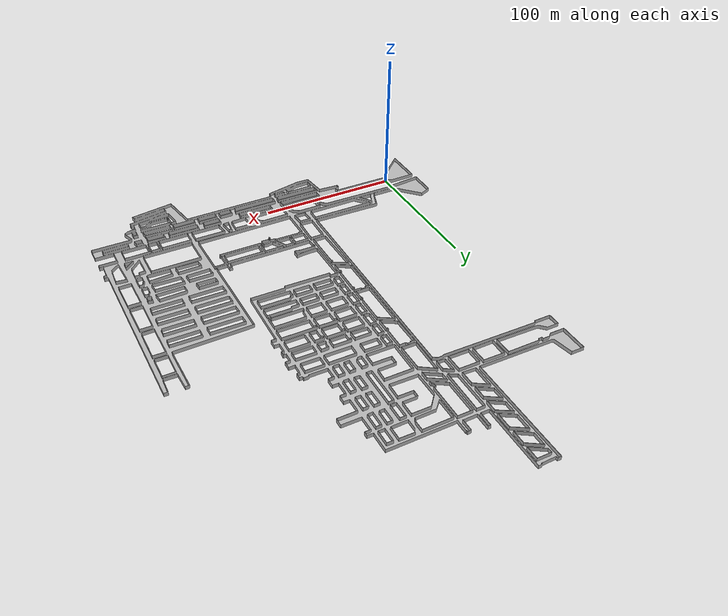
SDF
<sdf version="1.6">
 <world name="default">
  <light name="sun" type="directional">
   <pose>0 0 10 0 -0 0</pose>
   <diffuse>0.8 0.8 0.8 1</diffuse>
   <specular>0.2 0.2 0.2 1</specular>
   <attenuation>
    <range>1000</range>
    <constant>0.9</constant>
    <linear>0.01</linear>
    <quadratic>0.001</quadratic>
   </attenuation>
   <direction>-0.5 0.1 -0.9</direction>
  </light>
  <plugin name="ros_interface_plugin" filename="librotors_gazebo_ros_interface_plugin.so"/>
  <model name="pittsburgh_mine">
   <pose>-22.4884 286.186 0 0 -0 0</pose>
   <static>1</static>
   <link name="link">
    <collision name="collision">
     <geometry><mesh><uri>model://pittsburgh_mine/pittsburgh_mine.dae</uri></mesh></geometry>
    </collision>
    <visual name="visual">
     <geometry><mesh><uri>model://pittsburgh_mine/pittsburgh_mine.dae</uri></mesh></geometry>
    </visual>
   </link>
  </model>
  <spherical_coordinates>
   <surface_model>EARTH_WGS84</surface_model>
   <latitude_deg>47.3667</latitude_deg>
   <longitude_deg>8.55</longitude_deg>
   <elevation>500</elevation>
   <heading_deg>0</heading_deg>
  </spherical_coordinates>
  <physics name="1ms" default="0" type="ode">
   <max_step_size>0.01</max_step_size>
   <real_time_factor>1</real_time_factor>
   <real_time_update_rate>100</real_time_update_rate>
  </physics>
  <gravity>0 0 -9.8</gravity>
  <magnetic_field>6e-06 2.3e-05 -4.2e-05</magnetic_field>
  <atmosphere type="adiabatic"/>
  <scene><ambient>0.4 0.4 0.4 1</ambient><background>0.7 0.7 0.7 1</background><shadows>1</shadows></scene>
  <audio><device>default</device></audio>
 </world>
</sdf>
